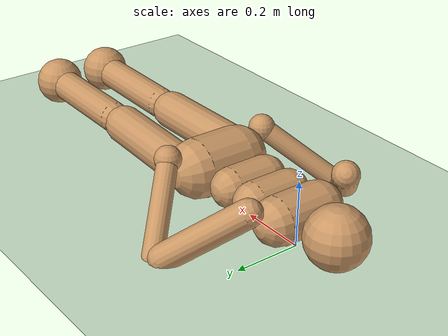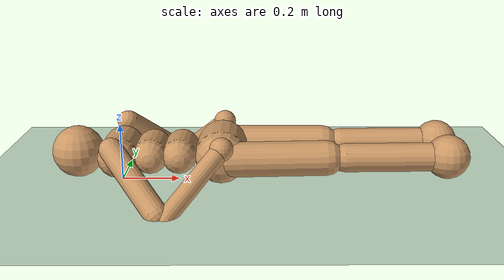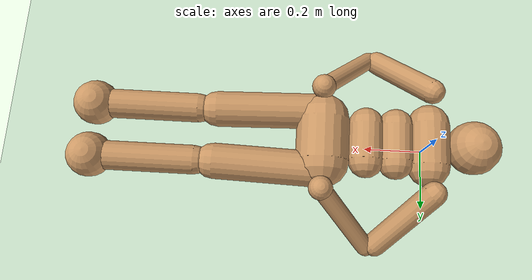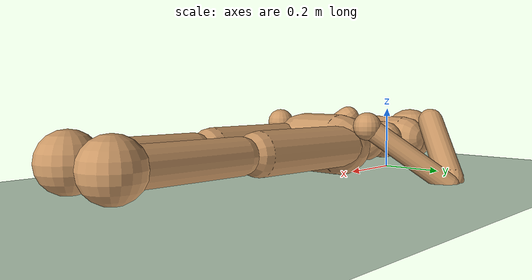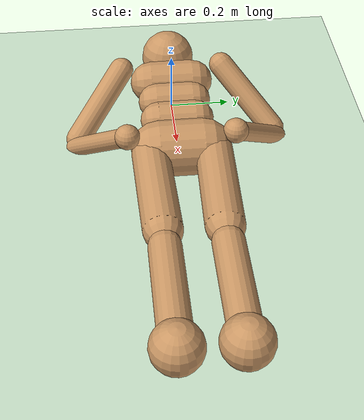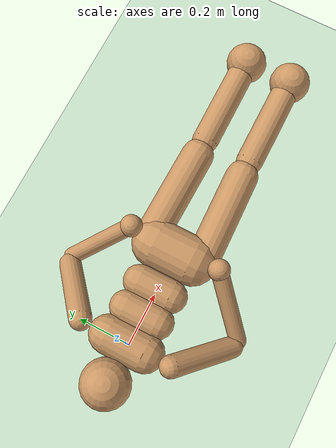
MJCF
<mujoco model="humanoidstandup">
  <compiler angle="degree" inertiafromgeom="true"/>
  <default>
      <joint armature="1" damping="1" limited="true"/>
      <geom conaffinity="1" condim="1" contype="1" margin="0.001" material="geom" rgba="0.8 0.6 .4 1"/>
      <motor ctrllimited="true" ctrlrange="-.4 .4"/>
  </default>
  <option integrator="RK4" iterations="50" solver="PGS" timestep="0.003">
  </option>
  <size nkey="5" nuser_geom="1"/>
  <visual>
      <map fogend="5" fogstart="3"/>
  </visual>
  <asset>
      <texture name="cloudy_sky" type="skybox" builtin="flat"
         width="512" height="512"
         rgb1="0.6 0.8 1.0"
         rgb2="0.55 0.75 0.95"
         markrgb="1 1 1"
         mark="random"
         random="0.0005"/>

      <texture builtin="flat" height="1278" mark="cross" markrgb="1 1 1" name="texgeom" random="0.01" rgb1="0.8 0.6 0.4" rgb2="0.8 0.6 0.4" type="cube" width="127"/>
      <texture builtin="checker" height="100" name="texplane" rgb1="0 0 0" rgb2="0.8 0.8 0.8" type="2d" width="100"/>
      <material name="MatPlane" reflectance="0.5" shininess="1" specular="1" texrepeat="60 60" texture="texplane"/>
      <material name="geom" texture="texgeom" texuniform="true"/>

      <texture name="beach_floor_texture" type="2d" file="./assets/beach3.png" />
      <material name="beach_material" texture="beach_floor_texture" texrepeat="4 25" rgba="1 1 1 1" specular="0" shininess="0"/>

      <texture name="mikael_head_texture" type="2d" file="./assets/mikael.png"/>
      <material name="mikael_material" texture="mikael_head_texture" specular="0.3" shininess="0.5" texrepeat="1 1"/>

      <texture name="mikael_skin_texture" type="2d" file="./assets/skintone.png"/>
      <material name="mikael_material_skin" texture="mikael_skin_texture" specular="0.3" shininess="0.5" texrepeat="1 1"/>

      <texture name="mikael_trunks_texture" type="2d" file="./assets/trunks.png"/>
      <material name="mikael_material_trunks" texture="mikael_trunks_texture" specular="0.3" shininess="0.5" texrepeat="2 2"/>

      <texture name="mikael_shirt_texture" type="2d" file="./assets/baywatch.png"/>
      <material name="mikael_material_shirt" texture="mikael_shirt_texture" specular="0.3" shininess="0.5" texrepeat="0.5 0.5"/>
  </asset>
  <worldbody>
      <light cutoff="100" diffuse="1 1 1" dir="-0 0 -1.3" directional="true" exponent="1" pos="0 0 1.3" specular=".1 .1 .1"/>
      <geom condim="3" friction="1 .1 .1" material="beach_material" name="floor" pos="0 0 0" rgba="0.8 0.9 0.8 1" size="20 20 0.125" type="plane"/>
      <body name="torso" pos="0 0 .105">
          <joint armature="0" damping="0" limited="false" name="root" pos="0 0 0" stiffness="0" type="free"/>
          <geom fromto="0 -.07 0 0 .07 0" name="torso1" size="0.07" type="capsule" material="mikael_material_shirt"/>
          <geom name="head" pos="-.15 0 0" size=".09" type="sphere" user="258" material="mikael_material"/>
          <camera name="first_person_view" pos="-0.06 0 -1.25" xyaxes="-2 -25 0 0 1 0"/>
          <geom fromto=".11 -.06 0 .11 .06 0" name="uwaist" size="0.06" type="capsule" material="mikael_material_shirt"/>
          <body name="lwaist" pos=".21 0 0" quat="1.000 0 -0.002 0">
              <geom fromto="0 -.06 0 0 .06 0" name="lwaist" size="0.06" type="capsule" material="mikael_material_shirt"/>
              <joint armature="0.02" axis="0 0 1" damping="5" name="abdomen_z" pos="0 0 0.065" range="-45 45" stiffness="20" type="hinge"/>
              <joint armature="0.02" axis="0 1 0" damping="5" name="abdomen_y" pos="0 0 0.065" range="-75 30" stiffness="10" type="hinge"/>
              <body name="pelvis" pos="0.165 0 0" quat="1.000 0 -0.002 0">
                  <joint armature="0.02" axis="1 0 0" damping="5" name="abdomen_x" pos="0 0 0.1" range="-35 35" stiffness="10" type="hinge"/>
                  <geom fromto="-.02 -.07 0 -.02 .07 0" name="butt" size="0.09" type="capsule" material="mikael_material_trunks"/>
                  <body name="right_thigh" pos="0 -0.1 0">
                      <joint armature="0.01" axis="1 0 0" damping="5" name="right_hip_x" pos="0 0 0" range="-25 5" stiffness="10" type="hinge"/>
                      <joint armature="0.01" axis="0 0 1" damping="5" name="right_hip_z" pos="0 0 0" range="-60 35" stiffness="10" type="hinge"/>
                      <joint armature="0.0080" axis="0 1 0" damping="5" name="right_hip_y" pos="0 0 0" range="-110 20" stiffness="20" type="hinge"/>
                      <geom fromto="0 0 0 0.34 0.01 0" name="right_thigh1" size="0.06" type="capsule" material="mikael_material_skin"/>
                      <body name="right_shin" pos="0.403 0.01 0">
                          <joint armature="0.0060" axis="0 -1 0" name="right_knee" pos="0 0 .02" range="-160 -2" type="hinge"/>
                          <geom fromto="0 0 0 0.3 0 0" name="right_shin1" size="0.049" type="capsule" material="mikael_material_skin"/>
                          <body name="right_foot" pos="0.35 0 -.10">
                              <geom name="right_foot" pos="0 0 0.1" size="0.075" type="sphere" user="0" material="mikael_material_skin"/>
                          </body>
                      </body>
                  </body>
                  <body name="left_thigh" pos="0 0.1 0">
                      <joint armature="0.01" axis="-1 0 0" damping="5" name="left_hip_x" pos="0 0 0" range="-25 5" stiffness="10" type="hinge"/>
                      <joint armature="0.01" axis="0 0 -1" damping="5" name="left_hip_z" pos="0 0 0" range="-60 35" stiffness="10" type="hinge"/>
                      <joint armature="0.01" axis="0 1 0" damping="5" name="left_hip_y" pos="0 0 0" range="-120 20" stiffness="20" type="hinge"/>
                      <geom fromto="0 0 0 0.34 -0.01 0" name="left_thigh1" size="0.06" type="capsule" material="mikael_material_skin"/>
                      <body name="left_shin" pos="0.403 -0.01 0">
                          <joint armature="0.0060" axis="0 -1 0" name="left_knee" pos="0 0 .02" range="-160 -2" stiffness="1" type="hinge"/>
                          <geom fromto="0 0 0 0.3 0 0" name="left_shin1" size="0.049" type="capsule" material="mikael_material_skin"/>
                          <body name="left_foot" pos="0.35 0 -.1">
                              <geom name="left_foot" type="sphere" size="0.075" pos="0 0 0.1" user="0" material="mikael_material_skin"/>
                          </body>
                      </body>
                  </body>
              </body>
          </body>
          <body name="right_upper_arm" pos="0 -0.17 0.06">
              <joint armature="0.0068" axis="2 1 1" name="right_shoulder1" pos="0 0 0" range="-85 60" stiffness="1" type="hinge"/>
              <joint armature="0.0051" axis="0 -1 1" name="right_shoulder2" pos="0 0 0" range="-85 60" stiffness="1" type="hinge"/>
              <geom fromto="0 0 0 .16 -.16 -.16" name="right_uarm1" size="0.04 0.16" type="capsule" material="mikael_material_skin"/>
              <body name="right_lower_arm" pos=".18 -.18 -.18">
                  <joint armature="0.0028" axis="0 -1 1" name="right_elbow" pos="0 0 0" range="-90 50" stiffness="0" type="hinge"/>
                  <geom fromto="0.01 0.01 0.01 .17 .17 .17" name="right_larm" size="0.031" type="capsule" material="mikael_material_skin"/>
                  <geom name="right_hand" pos=".18 .18 .18" size="0.04" type="sphere" material="mikael_material_skin"/>
              </body>
          </body>
          <body name="left_upper_arm" pos="0 0.17 0.06">
              <joint armature="0.0068" axis="2 -1 1" name="left_shoulder1" pos="0 0 0" range="-60 85" stiffness="1" type="hinge"/>
              <joint armature="0.0051" axis="0 1 1" name="left_shoulder2" pos="0 0 0" range="-60 85" stiffness="1" type="hinge"/>
              <geom fromto="0 0 0 .16 .16 -.16" name="left_uarm1" size="0.04 0.16" type="capsule" material="mikael_material_skin"/>
              <body name="left_lower_arm" pos=".18 .18 -.18">
                  <joint armature="0.0028" axis="0 -1 -1" name="left_elbow" pos="0 0 0" range="-90 50" stiffness="0" type="hinge"/>
                  <geom fromto="0.01 -0.01 0.01 .17 -.17 .17" name="left_larm" size="0.031" type="capsule" material="mikael_material_skin"/>
                  <geom name="left_hand" pos=".18 -.18 .18" size="0.04" type="sphere" material="mikael_material_skin"/>
              </body>
          </body>
      </body>
  </worldbody>
  <tendon>
      <fixed name="left_hipknee">
          <joint coef="-1" joint="left_hip_y"/>
          <joint coef="1" joint="left_knee"/>
      </fixed>
      <fixed name="right_hipknee">
          <joint coef="-1" joint="right_hip_y"/>
          <joint coef="1" joint="right_knee"/>
      </fixed>
  </tendon>

  <actuator>
      <motor gear="100" joint="abdomen_y" name="abdomen_y"/>
      <motor gear="100" joint="abdomen_z" name="abdomen_z"/>
      <motor gear="100" joint="abdomen_x" name="abdomen_x"/>
      <motor gear="100" joint="right_hip_x" name="right_hip_x"/>
      <motor gear="100" joint="right_hip_z" name="right_hip_z"/>
      <motor gear="300" joint="right_hip_y" name="right_hip_y"/>
      <motor gear="200" joint="right_knee" name="right_knee"/>
      <motor gear="100" joint="left_hip_x" name="left_hip_x"/>
      <motor gear="100" joint="left_hip_z" name="left_hip_z"/>
      <motor gear="300" joint="left_hip_y" name="left_hip_y"/>
      <motor gear="200" joint="left_knee" name="left_knee"/>
      <motor gear="25" joint="right_shoulder1" name="right_shoulder1"/>
      <motor gear="25" joint="right_shoulder2" name="right_shoulder2"/>
      <motor gear="25" joint="right_elbow" name="right_elbow"/>
      <motor gear="25" joint="left_shoulder1" name="left_shoulder1"/>
      <motor gear="25" joint="left_shoulder2" name="left_shoulder2"/>
      <motor gear="25" joint="left_elbow" name="left_elbow"/>
  </actuator>
</mujoco>
